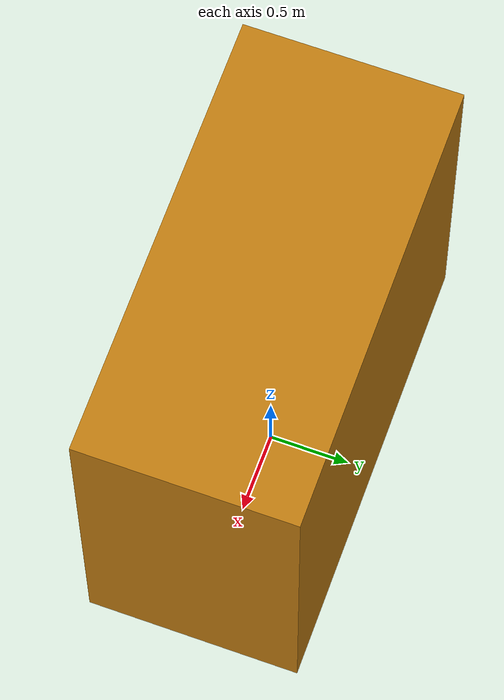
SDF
<?xml version='1.0'?>
<sdf version='1.6'>
  <model name='highbay_shelves'>
    <link name='link'>
      <inertial>
        <mass>1000</mass>
        <inertia>
          <ixx>1101.166667</ixx>
          <ixy>0</ixy>
          <ixz>0</ixz>
          <iyy>1110.166667</iyy>
          <iyz>0</iyz>
          <izz>1110.166667</izz>
        </inertia>
        <pose>0 0 1.25 0 -0 0</pose>
      </inertial>
      <self_collide>0</self_collide>
      <enable_wind>0</enable_wind>
      <kinematic>0</kinematic>
      <pose>0 0 0 0 -0 0</pose>
      <gravity>1</gravity>
      <visual name='visual'>
        <geometry>
          <box>
            <size>2.74 1.32 2.5</size>
          </box>
        </geometry>
        <material>
          <script>
            <name>Gazebo/Grey</name>
            <uri>file://media/materials/scripts/gazebo.material</uri>
          </script>
          <shader type='pixel'>
            <normal_map>__default__</normal_map>
          </shader>
          <ambient>0.757 0.49 0.067 1</ambient>
          <diffuse>0.757 0.49 0.067 1</diffuse>
          <specular>0.3 0.3 0.3 1</specular>
          <emissive>0 0 0 1</emissive>
        </material>
        <pose>0 0 1.25 0 -0 0</pose>
        <transparency>0</transparency>
        <cast_shadows>1</cast_shadows>
      </visual>
      <collision name='collision'>
        <laser_retro>0</laser_retro>
        <max_contacts>10</max_contacts>
        <pose>0 0 1.25 0 -0 0</pose>
        <geometry>
          <box>
            <size>2.74 1.32 2.5</size>
          </box>
        </geometry>
        <surface>
          <friction>
            <ode>
              <mu>100</mu>
              <mu2>50</mu2>
              <fdir1>0 0 0</fdir1>
              <slip1>0</slip1>
              <slip2>0</slip2>
            </ode>
            <torsional>
              <coefficient>1</coefficient>
              <patch_radius>0</patch_radius>
              <surface_radius>0</surface_radius>
              <use_patch_radius>1</use_patch_radius>
              <ode>
                <slip>0</slip>
              </ode>
            </torsional>
          </friction>
          <bounce>
            <restitution_coefficient>0</restitution_coefficient>
            <threshold>1e+06</threshold>
          </bounce>
          <contact>
            <collide_without_contact>0</collide_without_contact>
            <collide_without_contact_bitmask>1</collide_without_contact_bitmask>
            <collide_bitmask>1</collide_bitmask>
            <ode>
              <soft_cfm>0</soft_cfm>
              <soft_erp>0.2</soft_erp>
              <kp>1e+13</kp>
              <kd>1</kd>
              <max_vel>0.01</max_vel>
              <min_depth>0</min_depth>
            </ode>
            <bullet>
              <split_impulse>1</split_impulse>
              <split_impulse_penetration_threshold>-0.01</split_impulse_penetration_threshold>
              <soft_cfm>0</soft_cfm>
              <soft_erp>0.2</soft_erp>
              <kp>1e+13</kp>
              <kd>1</kd>
            </bullet>
          </contact>
        </surface>
      </collision>
    </link>
    <static>0</static>
    <allow_auto_disable>1</allow_auto_disable>
  </model>
</sdf>
